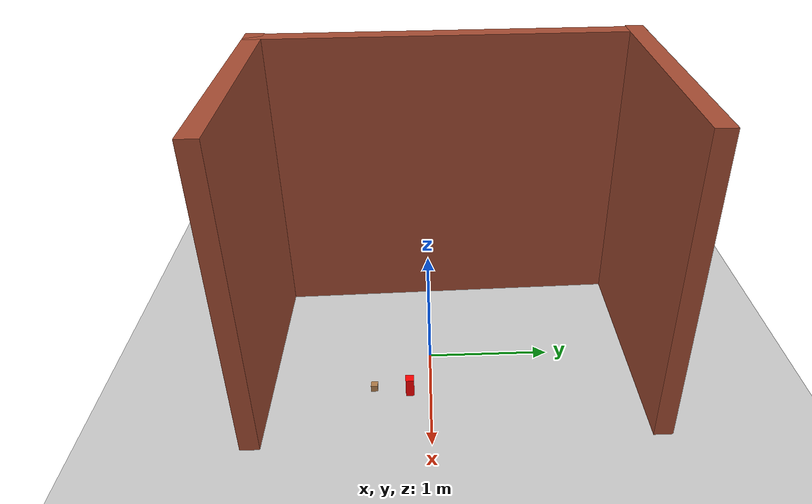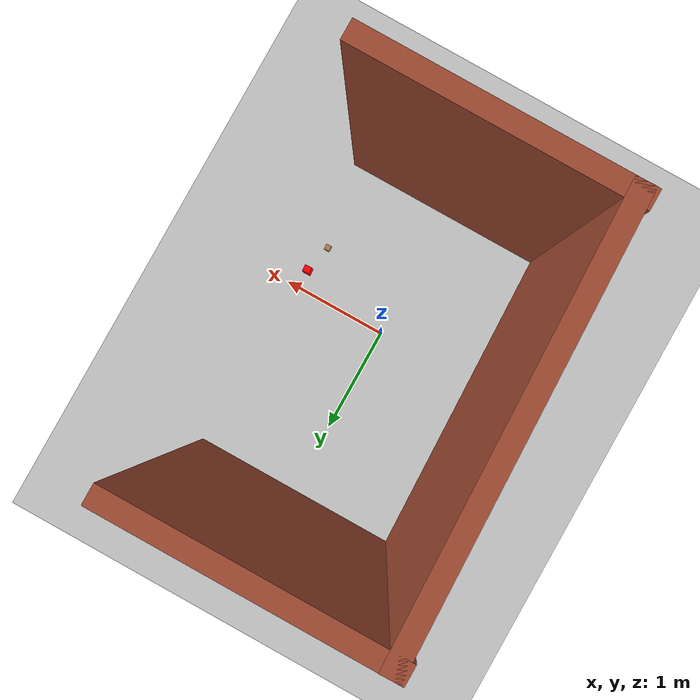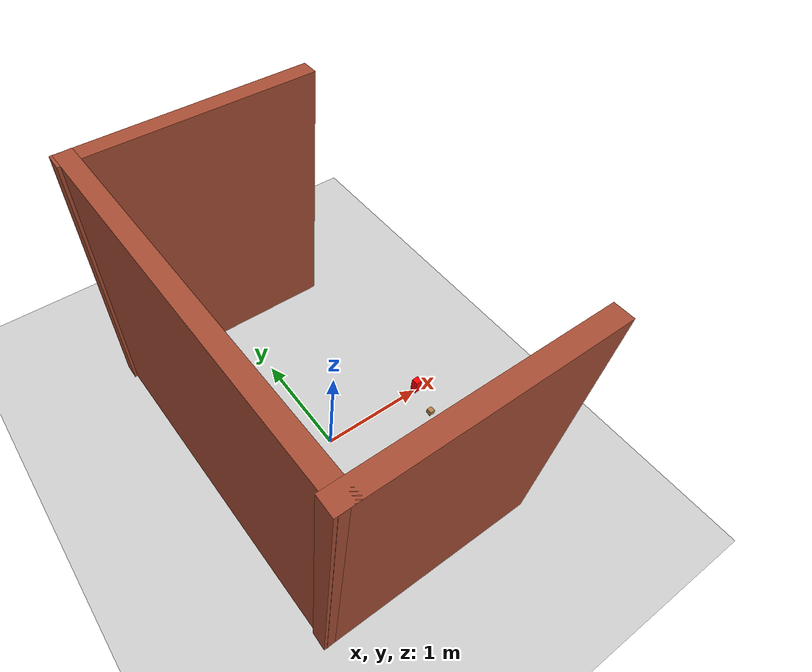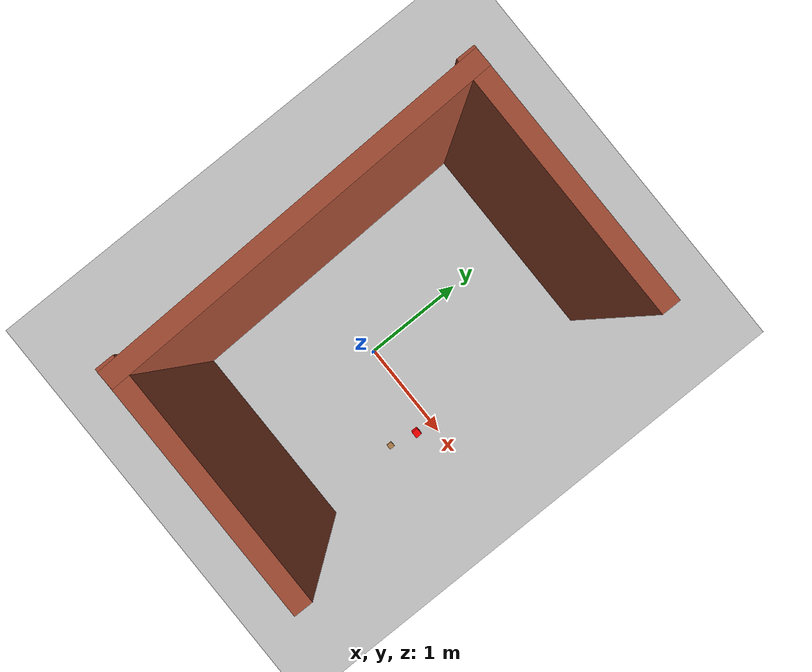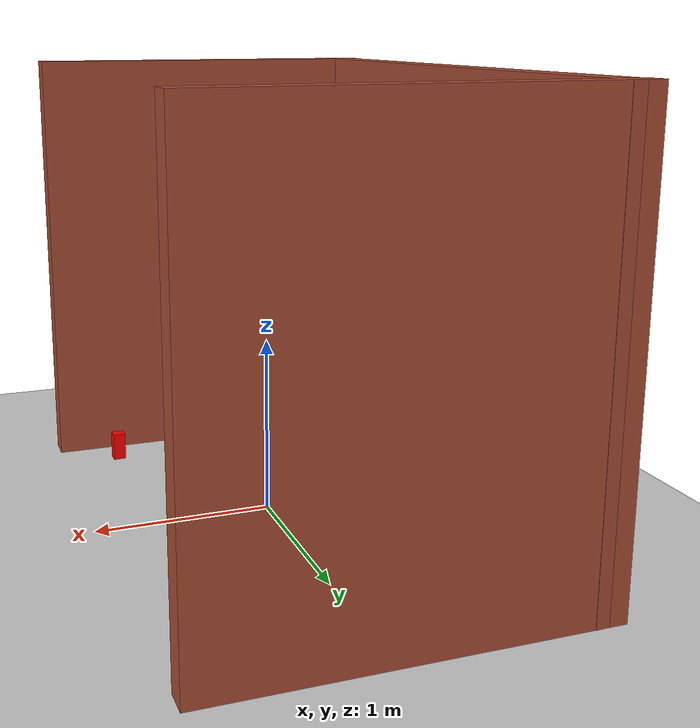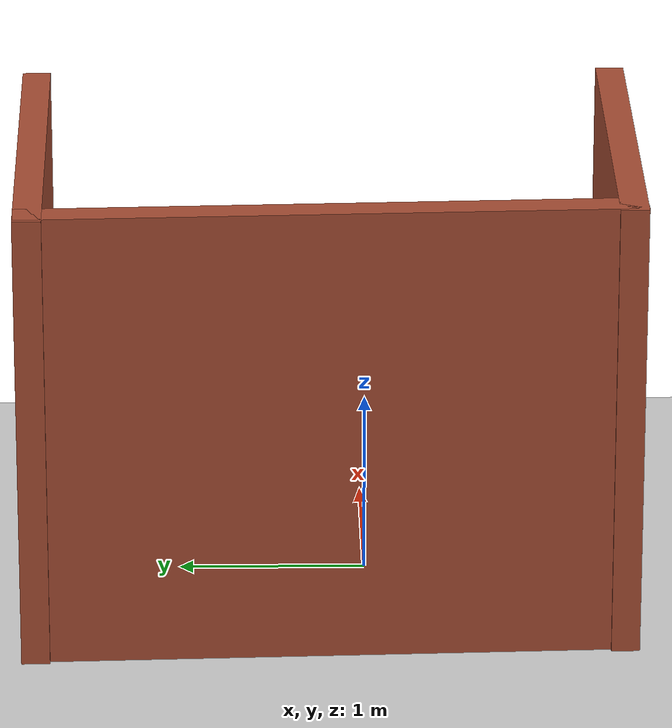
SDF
<sdf version="1.7">
 <world name="default">
  <light name="sun" type="directional">
   <pose>0 0 10 0 -0 0</pose>
   <diffuse>0.8 0.8 0.8 1</diffuse>
   <specular>0.2 0.2 0.2 1</specular>
   <attenuation>
    <range>1000</range>
    <constant>0.9</constant>
    <linear>0.01</linear>
    <quadratic>0.001</quadratic>
   </attenuation>
   <direction>-0.5 0.1 -0.9</direction>
   <spot><inner_angle>0</inner_angle><outer_angle>0</outer_angle><falloff>0</falloff></spot>
  </light>
  <model name="ground_plane">
   <static>1</static>
   <link name="link">
    <collision name="collision">
     <geometry><plane><normal>0 0 1</normal><size>100 100</size></plane></geometry>
     <surface>
      <contact><collide_bitmask>65535</collide_bitmask></contact>
      <friction><ode><mu>100</mu><mu2>50</mu2></ode></friction>
     </surface>
    </collision>
    <visual name="visual">
     <cast_shadows>0</cast_shadows>
     <geometry><plane><normal>0 0 1</normal><size>100 100</size></plane></geometry>
     <material>
      <script><uri>file://media/materials/scripts/gazebo.material</uri><name>Gazebo/Grey</name></script>
     </material>
    </visual>
   </link>
  </model>
  <gravity>0 0 -9.8</gravity>
  <magnetic_field>6e-06 2.3e-05 -4.2e-05</magnetic_field>
  <atmosphere type="adiabatic"/>
  <physics type="ode">
   <max_step_size>0.001</max_step_size>
   <real_time_factor>1</real_time_factor>
   <real_time_update_rate>1000</real_time_update_rate>
  </physics>
  <scene><ambient>0.4 0.4 0.4 1</ambient><background>0.7 0.7 0.7 1</background><shadows>1</shadows></scene>
  <spherical_coordinates>
   <surface_model>EARTH_WGS84</surface_model>
   <latitude_deg>0</latitude_deg>
   <longitude_deg>0</longitude_deg>
   <elevation>0</elevation>
   <heading_deg>0</heading_deg>
  </spherical_coordinates>
  <model name="pick_and_place">
   <pose>-0.085065 0.201117 0 0 -0 0</pose>
   <link name="Wall_4">
    <collision name="Wall_4_Collision">
     <geometry><box><size>2.07034 0.15 2.5</size></box></geometry>
     <pose>0 0 1.25 0 -0 0</pose>
    </collision>
    <visual name="Wall_4_Visual">
     <pose>0 0 1.25 0 -0 0</pose>
     <geometry><box><size>2.07034 0.15 2.5</size></box></geometry>
     <material>
      <script><uri>file://media/materials/scripts/gazebo.material</uri><name>Gazebo/Bricks</name></script>
      <ambient>1 1 1 1</ambient>
     </material>
     <meta><layer>0</layer></meta>
    </visual>
    <pose>0.046261 -1.55 0 0 -0 3.14159</pose>
   </link>
   <link name="Wall_5">
    <collision name="Wall_5_Collision">
     <geometry><box><size>3.25138 0.15 2.5</size></box></geometry>
     <pose>0 0 1.25 0 -0 0</pose>
    </collision>
    <visual name="Wall_5_Visual">
     <pose>0 0 1.25 0 -0 0</pose>
     <geometry><box><size>3.25138 0.15 2.5</size></box></geometry>
     <material>
      <script><uri>file://media/materials/scripts/gazebo.material</uri><name>Gazebo/Bricks</name></script>
      <ambient>1 1 1 1</ambient>
     </material>
     <meta><layer>0</layer></meta>
    </visual>
    <pose>-0.937039 -0 0 0 -0 1.60063</pose>
   </link>
   <link name="Wall_6">
    <collision name="Wall_6_Collision">
     <geometry><box><size>2.13973 0.15 2.5</size></box></geometry>
     <pose>0 0 1.25 0 -0 0</pose>
    </collision>
    <visual name="Wall_6_Visual">
     <pose>0 0 1.25 0 -0 0</pose>
     <geometry><box><size>2.13973 0.15 2.5</size></box></geometry>
     <material>
      <script><uri>file://media/materials/scripts/gazebo.material</uri><name>Gazebo/Bricks</name></script>
      <ambient>1 1 1 1</ambient>
     </material>
     <meta><layer>0</layer></meta>
    </visual>
    <pose>-0.011565 1.55 0 0 -0 0</pose>
   </link>
   <static>1</static>
  </model>
  <light name="sun" type="directional">
   <pose>-0.686154 -0.62425 10 0 -0 0</pose>
   <diffuse>0.8 0.8 0.8 1</diffuse>
   <specular>0.2 0.2 0.2 1</specular>
   <attenuation>
    <range>1000</range>
    <constant>0.9</constant>
    <linear>0.01</linear>
    <quadratic>0.001</quadratic>
   </attenuation>
   <direction>-0.5 0.1 -0.9</direction>
  </light>
  <model name="unit_box_red">
   <link name="link">
    <inertial>
     <mass>1</mass>
     <inertia>
      <ixx>0.166667</ixx>
      <ixy>0</ixy>
      <ixz>0</ixz>
      <iyy>0.166667</iyy>
      <iyz>0</iyz>
      <izz>0.166667</izz>
     </inertia>
    </inertial>
    <visual name="visual">
     <geometry><box><size>0.06393 0.060568 0.144136</size></box></geometry>
     <material>
      <script><name>Gazebo/Grey</name><uri>file://media/materials/scripts/gazebo.material</uri></script>
      <shader type="pixel"><normal_map>__default__</normal_map></shader>
      <ambient>1 0 0 0</ambient>
      <diffuse>0.7 0.7 0.7 1</diffuse>
      <specular>0.01 0.01 0.01 1</specular>
      <emissive>0 0 0 1</emissive>
     </material>
    </visual>
    <collision name="collision">
     <geometry><box><size>0.06393 0.060568 0.144136</size></box></geometry>
     <surface>
      <friction>
       <ode><mu>1</mu><mu2>1</mu2><fdir1>0 0 0</fdir1><slip1>0</slip1><slip2>0</slip2></ode>
       <torsional>
        <coefficient>1</coefficient>
        <patch_radius>0</patch_radius>
        <surface_radius>0</surface_radius>
        <use_patch_radius>1</use_patch_radius>
        <ode><slip>0</slip></ode>
       </torsional>
      </friction>
      <bounce><restitution_coefficient>0</restitution_coefficient><threshold>1e+06</threshold></bounce>
      <contact>
       <collide_without_contact>0</collide_without_contact>
       <collide_without_contact_bitmask>1</collide_without_contact_bitmask>
       <collide_bitmask>1</collide_bitmask>
       <ode>
        <soft_cfm>0</soft_cfm>
        <soft_erp>0.2</soft_erp>
        <kp>1e+13</kp>
        <kd>1</kd>
        <max_vel>0.01</max_vel>
        <min_depth>0</min_depth>
       </ode>
       <bullet>
        <split_impulse>1</split_impulse>
        <split_impulse_penetration_threshold>-0.01</split_impulse_penetration_threshold>
        <soft_cfm>0</soft_cfm>
        <soft_erp>0.2</soft_erp>
        <kp>1e+13</kp>
        <kd>1</kd>
       </bullet>
      </contact>
     </surface>
    </collision>
   </link>
   <static>0</static>
   <pose>0.82351 -0.153435 0.431993 -1.7e-05 2e-06 0.0352</pose>
  </model>
  <model name="wood_cube_5cm">
   <link name="link">
    <pose>0 0 0.025 0 -0 0</pose>
    <inertial>
     <mass>0.0565</mass>
     <inertia>
      <ixx>2.35417e-05</ixx>
      <ixy>0</ixy>
      <ixz>0</ixz>
      <iyy>2.35417e-05</iyy>
      <iyz>0</iyz>
      <izz>2.35417e-05</izz>
     </inertia>
    </inertial>
    <collision name="collision">
     <geometry><box><size>0.05 0.05 0.05</size></box></geometry>
     <surface>
      <contact>
       <poissons_ratio>0.347</poissons_ratio>
       <elastic_modulus>8.8e+09</elastic_modulus>
       <ode><kp>100000</kp><kd>1</kd><max_vel>1</max_vel><min_depth>0.001</min_depth></ode>
      </contact>
      <friction>
       <torsional>
        <coefficient>1</coefficient>
        <use_patch_radius>0</use_patch_radius>
        <surface_radius>0.05</surface_radius>
       </torsional>
      </friction>
     </surface>
    </collision>
    <visual name="visual">
     <geometry><box><size>0.05 0.05 0.05</size></box></geometry>
     <material>
      <script><uri>file://media/materials/scripts/gazebo.material</uri><name>Gazebo/Wood</name></script>
     </material>
    </visual>
   </link>
   <pose>0.7724 -0.417268 0.358924 -0 -0 -7e-06</pose>
  </model>
  <light name="user_directional_light_0" type="directional">
   <pose>-0.36463 0.263594 1 0 -0 0</pose>
   <diffuse>0.5 0.5 0.5 1</diffuse>
   <specular>0.1 0.1 0.1 1</specular>
   <direction>0.1 0.1 -0.9</direction>
   <attenuation>
    <range>20</range>
    <constant>0.5</constant>
    <linear>0.01</linear>
    <quadratic>0.001</quadratic>
   </attenuation>
  </light>
  <light name="user_directional_light_1" type="directional">
   <pose>1.17726 1.02284 1 0 -0 0</pose>
   <diffuse>0.5 0.5 0.5 1</diffuse>
   <specular>0.1 0.1 0.1 1</specular>
   <direction>0.1 0.1 -0.9</direction>
   <attenuation>
    <range>20</range>
    <constant>0.5</constant>
    <linear>0.01</linear>
    <quadratic>0.001</quadratic>
   </attenuation>
  </light>
  <light name="user_directional_light_2" type="directional">
   <pose>0.016752 -0.546762 1 0 -0 0</pose>
   <diffuse>0.5 0.5 0.5 1</diffuse>
   <specular>0.1 0.1 0.1 1</specular>
   <direction>0.1 0.1 -0.9</direction>
   <attenuation>
    <range>20</range>
    <constant>0.5</constant>
    <linear>0.01</linear>
    <quadratic>0.001</quadratic>
   </attenuation>
  </light>
 </world>
</sdf>
